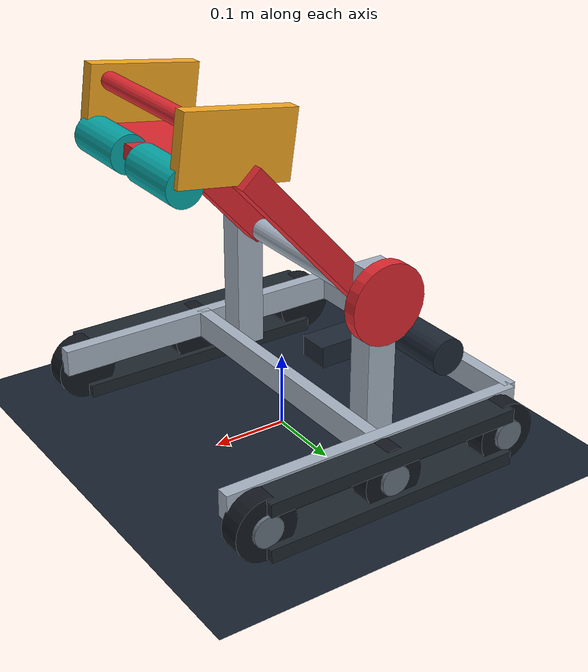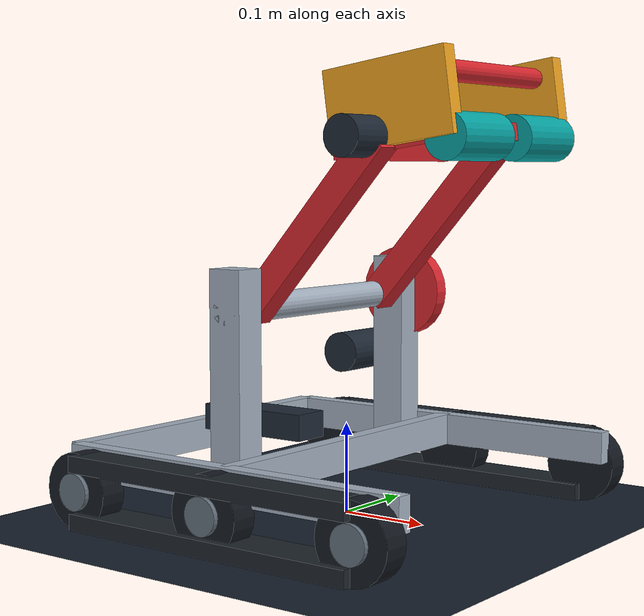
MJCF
<mujoco model="Inverting Yoke Goal Capper"><compiler angle="degree" /><visual><global offwidth="800" offheight="600" /><quality offsamples="0" /><headlight ambient=".45 .45 .45" /></visual><worldbody><light pos="0 -1 3" castshadow="false" /><geom type="plane" size="2 2 .1" rgba=".09 .13 .18 1" /><geom type="box" pos="0 -0.2 0.066275" size="0.215 0.009 0.018" euler="0 0 0" rgba=".65 .7 .76 1" contype="0" conaffinity="0" /><geom type="box" pos="0 0.2 0.066275" size="0.215 0.009 0.018" euler="0 0 0" rgba=".65 .7 .76 1" contype="0" conaffinity="0" /><geom type="box" pos="-0.215 0 0.066275" size="0.009 0.2 0.018" euler="0 0 0" rgba=".65 .7 .76 1" contype="0" conaffinity="0" /><geom type="box" pos="0 0 0.066275" size="0.009 0.2 0.018" euler="0 0 0" rgba=".65 .7 .76 1" contype="0" conaffinity="0" /><geom type="cylinder" pos="-0.18 -0.221 0.041275" size="0.041275 0.015" euler="90 0 0" rgba=".08 .1 .13 1" contype="0" conaffinity="0" /><geom type="cylinder" pos="-0.18 -0.23800000000000002 0.041275" size="0.019812 0.003" euler="90 0 0" rgba=".4 .45 .5 1" contype="0" conaffinity="0" /><geom type="cylinder" pos="0.0 -0.221 0.041275" size="0.041275 0.015" euler="90 0 0" rgba=".08 .1 .13 1" contype="0" conaffinity="0" /><geom type="cylinder" pos="0.0 -0.23800000000000002 0.041275" size="0.019812 0.003" euler="90 0 0" rgba=".4 .45 .5 1" contype="0" conaffinity="0" /><geom type="cylinder" pos="0.18 -0.221 0.041275" size="0.041275 0.015" euler="90 0 0" rgba=".08 .1 .13 1" contype="0" conaffinity="0" /><geom type="cylinder" pos="0.18 -0.23800000000000002 0.041275" size="0.019812 0.003" euler="90 0 0" rgba=".4 .45 .5 1" contype="0" conaffinity="0" /><geom type="box" pos="0 -0.221 0.01031875" size="0.18 0.025 0.009" euler="0 0 0" rgba=".12 .15 .18 1" contype="0" conaffinity="0" /><geom type="box" pos="0 -0.221 0.07223125" size="0.18 0.025 0.009" euler="0 0 0" rgba=".12 .15 .18 1" contype="0" conaffinity="0" /><geom type="cylinder" pos="-0.18 0.221 0.041275" size="0.041275 0.015" euler="90 0 0" rgba=".08 .1 .13 1" contype="0" conaffinity="0" /><geom type="cylinder" pos="-0.18 0.23800000000000002 0.041275" size="0.019812 0.003" euler="90 0 0" rgba=".4 .45 .5 1" contype="0" conaffinity="0" /><geom type="cylinder" pos="0.0 0.221 0.041275" size="0.041275 0.015" euler="90 0 0" rgba=".08 .1 .13 1" contype="0" conaffinity="0" /><geom type="cylinder" pos="0.0 0.23800000000000002 0.041275" size="0.019812 0.003" euler="90 0 0" rgba=".4 .45 .5 1" contype="0" conaffinity="0" /><geom type="cylinder" pos="0.18 0.221 0.041275" size="0.041275 0.015" euler="90 0 0" rgba=".08 .1 .13 1" contype="0" conaffinity="0" /><geom type="cylinder" pos="0.18 0.23800000000000002 0.041275" size="0.019812 0.003" euler="90 0 0" rgba=".4 .45 .5 1" contype="0" conaffinity="0" /><geom type="box" pos="0 0.221 0.01031875" size="0.18 0.025 0.009" euler="0 0 0" rgba=".12 .15 .18 1" contype="0" conaffinity="0" /><geom type="box" pos="0 0.221 0.07223125" size="0.18 0.025 0.009" euler="0 0 0" rgba=".12 .15 .18 1" contype="0" conaffinity="0" /><geom type="box" pos="-0.12 0.0 0.091275" size="0.07 0.022 0.015" euler="0 0 0" rgba=".12 .16 .21 1" contype="0" conaffinity="0" /><geom type="box" pos="-0.035 0.145 0.165" size="0.02 0.0175 0.1125" euler="0.0 0.0 0.0" rgba=".65 .7 .76 1" contype="0" conaffinity="0" /><geom type="box" pos="-0.035 -0.145 0.165" size="0.02 0.0175 0.1125" euler="0.0 0.0 0.0" rgba=".65 .7 .76 1" contype="0" conaffinity="0" /><geom type="cylinder" pos="-0.035 0.0 0.235" size="0.015 0.1625" euler="90.0 0.0 0.0" rgba=".65 .7 .76 1" contype="0" conaffinity="0" /><geom type="box" pos="0.042 0.112 0.32" size="0.1225 0.014 0.016" euler="0.0 -48.0 0.0" rgba=".87 .16 .19 1" contype="0" conaffinity="0" /><geom type="box" pos="0.042 -0.112 0.32" size="0.1225 0.014 0.016" euler="0.0 -48.0 0.0" rgba=".87 .16 .19 1" contype="0" conaffinity="0" /><geom type="box" pos="0.131 0.0 0.407" size="0.0725 0.1025 0.009" euler="0.0 -8.0 0.0" rgba=".87 .16 .19 1" contype="0" conaffinity="0" /><geom type="box" pos="0.132 0.105 0.445" size="0.0725 0.009 0.0425" euler="0.0 -8.0 0.0" rgba=".96 .66 .13 1" contype="0" conaffinity="0" /><geom type="box" pos="0.132 -0.105 0.445" size="0.0725 0.009 0.0425" euler="0.0 -8.0 0.0" rgba=".96 .66 .13 1" contype="0" conaffinity="0" /><geom type="capsule" pos="0.177 0.0 0.475" size="0.011 0.0915" euler="90.0 0.0 0.0" rgba=".87 .16 .19 1" contype="0" conaffinity="0" /><geom type="cylinder" pos="0.196 0.062 0.411" size="0.024 0.045" euler="90.0 0.0 0.0" rgba=".03 .65 .65 1" contype="0" conaffinity="0" /><geom type="cylinder" pos="0.196 -0.062 0.411" size="0.024 0.045" euler="90.0 0.0 0.0" rgba=".03 .65 .65 1" contype="0" conaffinity="0" /><geom type="cylinder" pos="-0.035 0.164 0.235" size="0.0525 0.009" euler="90.0 0.0 0.0" rgba=".87 .16 .19 1" contype="0" conaffinity="0" /><geom type="cylinder" pos="-0.105 0.165 0.158" size="0.024 0.0375" euler="90.0 0.0 0.0" rgba=".12 .16 .21 1" contype="0" conaffinity="0" /><geom type="cylinder" pos="0.114 -0.13 0.411" size="0.021 0.0325" euler="90.0 0.0 0.0" rgba=".12 .16 .21 1" contype="0" conaffinity="0" /></worldbody></mujoco>
